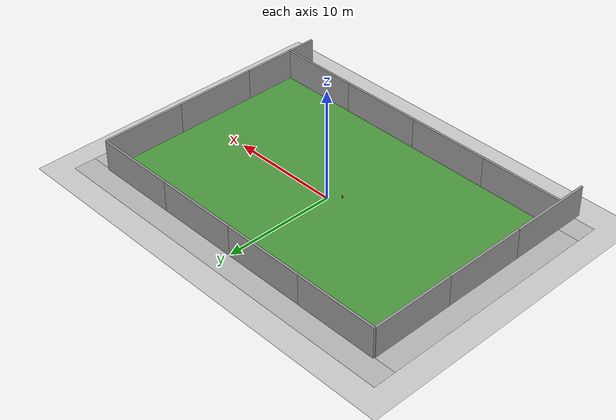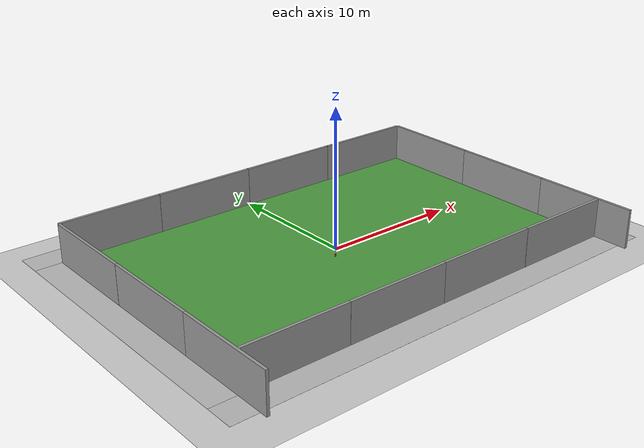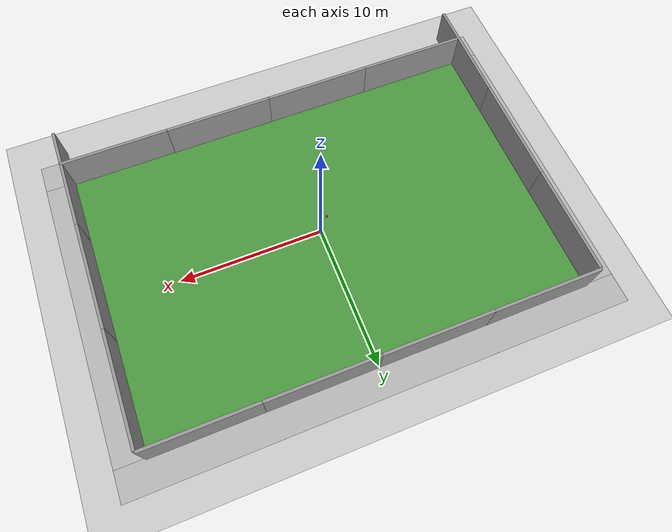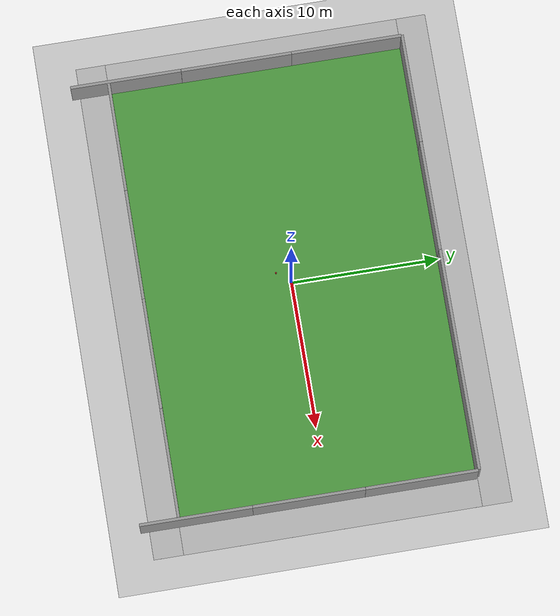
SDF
<sdf version="1.7">
 <world name="default">
  <model name="ground_plane">
   <static>1</static>
   <link name="link">
    <collision name="collision">
     <geometry><plane><normal>0 0 1</normal><size>100 100</size></plane></geometry>
     <surface><friction><ode><mu>100</mu><mu2>50</mu2></ode></friction></surface>
    </collision>
    <visual name="visual">
     <cast_shadows>0</cast_shadows>
     <geometry><plane><normal>0 0 1</normal><size>100 100</size></plane></geometry>
     <material>
      <script><uri>file://media/materials/scripts/gazebo.material</uri><name>Gazebo/Grey</name></script>
     </material>
    </visual>
   </link>
  </model>
  <light name="sun" type="directional">
   <pose>0 0 10 0 -0 0</pose>
   <diffuse>0.8 0.8 0.8 1</diffuse>
   <specular>0.2 0.2 0.2 1</specular>
   <attenuation>
    <range>1000</range>
    <constant>0.9</constant>
    <linear>0.01</linear>
    <quadratic>0.001</quadratic>
   </attenuation>
   <direction>-0.5 0.1 -0.9</direction>
   <spot><inner_angle>0</inner_angle><outer_angle>0</outer_angle><falloff>0</falloff></spot>
  </light>
  <scene><shadows>0</shadows><ambient>0.4 0.4 0.4 1</ambient><background>0.7 0.7 0.7 1</background></scene>
  <physics type="ode">
   <real_time_update_rate>1000</real_time_update_rate>
   <max_step_size>0.001</max_step_size>
   <real_time_factor>1</real_time_factor>
   <ode>
    <solver>
     <type>quick</type>
     <iters>150</iters>
     <precon_iters>0</precon_iters>
     <sor>1.4</sor>
     <use_dynamic_moi_rescaling>1</use_dynamic_moi_rescaling>
    </solver>
    <constraints>
     <cfm>1e-05</cfm>
     <erp>0.2</erp>
     <contact_max_correcting_vel>2000</contact_max_correcting_vel>
     <contact_surface_layer>0.01</contact_surface_layer>
    </constraints>
   </ode>
  </physics>
  <gravity>0 0 -9.8</gravity>
  <magnetic_field>6e-06 2.3e-05 -4.2e-05</magnetic_field>
  <atmosphere type="adiabatic"/>
  <spherical_coordinates>
   <surface_model>EARTH_WGS84</surface_model>
   <latitude_deg>0</latitude_deg>
   <longitude_deg>0</longitude_deg>
   <elevation>0</elevation>
   <heading_deg>0</heading_deg>
  </spherical_coordinates>
  <model name="robocup_3d_field">
   <static>1</static>
   <link name="field">
    <pose>0 0 0.01 0 -0 0</pose>
    <collision name="collision">
     <geometry><plane><normal>0 0 1</normal><size>30 20</size></plane></geometry>
     <surface><friction><ode><mu>100</mu><mu2>50</mu2></ode></friction></surface>
    </collision>
    <visual name="base1">
     <pose>0 11 0.001 0 -0 0</pose>
     <cast_shadows>0</cast_shadows>
     <geometry><plane><normal>0 0 1</normal><size>34 2</size></plane></geometry>
     <material>
      <script>
       <uri>model://robocup_3Dsim_field/materials/scripts/</uri>
       <uri>model://robocup_3Dsim_field/materials/textures/</uri>
       <name>RoboCup/FieldBorder</name>
      </script>
     </material>
    </visual>
    <visual name="base2">
     <pose>0 -11 0.001 0 -0 0</pose>
     <cast_shadows>0</cast_shadows>
     <geometry><plane><normal>0 0 1</normal><size>34 2</size></plane></geometry>
     <material>
      <script>
       <uri>model://robocup_3Dsim_field/materials/scripts/</uri>
       <uri>model://robocup_3Dsim_field/materials/textures/</uri>
       <name>RoboCup/FieldBorder</name>
      </script>
     </material>
    </visual>
    <visual name="base3">
     <pose>16 0 0.001 0 -0 0</pose>
     <cast_shadows>0</cast_shadows>
     <geometry><plane><normal>0 0 1</normal><size>2 20</size></plane></geometry>
     <material>
      <script>
       <uri>model://robocup_3Dsim_field/materials/scripts/</uri>
       <uri>model://robocup_3Dsim_field/materials/textures/</uri>
       <name>RoboCup/FieldBorder</name>
      </script>
     </material>
    </visual>
    <visual name="base4">
     <pose>-16 0 0.001 0 -0 0</pose>
     <cast_shadows>0</cast_shadows>
     <geometry><plane><normal>0 0 1</normal><size>2 20</size></plane></geometry>
     <material>
      <script>
       <uri>model://robocup_3Dsim_field/materials/scripts/</uri>
       <uri>model://robocup_3Dsim_field/materials/textures/</uri>
       <name>RoboCup/FieldBorder</name>
      </script>
     </material>
    </visual>
    <visual name="carpet">
     <cast_shadows>0</cast_shadows>
     <geometry><plane><normal>0 0 1</normal><size>30 20</size></plane></geometry>
     <material>
      <script>
       <uri>model://robocup_3Dsim_field/materials/scripts/</uri>
       <uri>model://robocup_3Dsim_field/materials/textures/</uri>
       <name>RoboCup/Grass</name>
      </script>
     </material>
    </visual>
   </link>
   <pose>0.014638 -0.007381 0 0 -0 0</pose>
  </model>
  <model name="grey_wall">
   <static>1</static>
   <link name="link">
    <pose>0 0 1.4 0 -0 0</pose>
    <collision name="collision"><geometry><box><size>7.5 0.2 2.8</size></box></geometry></collision>
    <visual name="visual">
     <cast_shadows>0</cast_shadows>
     <geometry><box><size>7.5 0.2 2.8</size></box></geometry>
     <material>
      <script>
       <uri>model://grey_wall/materials/scripts</uri>
       <uri>model://grey_wall/materials/textures</uri>
       <name>vrc/grey_wall</name>
      </script>
     </material>
    </visual>
   </link>
   <pose>-11.2572 10.0129 0 0 -0 0</pose>
  </model>
  <model name="grey_wall_clone">
   <static>1</static>
   <link name="link">
    <pose>0 0 1.4 0 -0 0</pose>
    <collision name="collision"><geometry><box><size>7.5 0.2 2.8</size></box></geometry></collision>
    <visual name="visual">
     <cast_shadows>0</cast_shadows>
     <geometry><box><size>7.5 0.2 2.8</size></box></geometry>
     <material>
      <script>
       <uri>model://grey_wall/materials/scripts</uri>
       <uri>model://grey_wall/materials/textures</uri>
       <name>vrc/grey_wall</name>
      </script>
     </material>
    </visual>
   </link>
   <pose>-3.75841 10.0047 0 0 -0 0</pose>
  </model>
  <model name="grey_wall_clone_0">
   <static>1</static>
   <link name="link">
    <pose>0 0 1.4 0 -0 0</pose>
    <collision name="collision"><geometry><box><size>7.5 0.2 2.8</size></box></geometry></collision>
    <visual name="visual">
     <cast_shadows>0</cast_shadows>
     <geometry><box><size>7.5 0.2 2.8</size></box></geometry>
     <material>
      <script>
       <uri>model://grey_wall/materials/scripts</uri>
       <uri>model://grey_wall/materials/textures</uri>
       <name>vrc/grey_wall</name>
      </script>
     </material>
    </visual>
   </link>
   <pose>3.74716 10.0083 0 0 -0 0</pose>
  </model>
  <model name="grey_wall_clone_1">
   <static>1</static>
   <link name="link">
    <pose>0 0 1.4 0 -0 0</pose>
    <collision name="collision"><geometry><box><size>7.5 0.2 2.8</size></box></geometry></collision>
    <visual name="visual">
     <cast_shadows>0</cast_shadows>
     <geometry><box><size>7.5 0.2 2.8</size></box></geometry>
     <material>
      <script>
       <uri>model://grey_wall/materials/scripts</uri>
       <uri>model://grey_wall/materials/textures</uri>
       <name>vrc/grey_wall</name>
      </script>
     </material>
    </visual>
   </link>
   <pose>11.2527 10.0033 0 0 -0 0</pose>
  </model>
  <model name="grey_wall_clone_2">
   <static>1</static>
   <link name="link">
    <pose>0 0 1.4 0 -0 0</pose>
    <collision name="collision"><geometry><box><size>7.5 0.2 2.8</size></box></geometry></collision>
    <visual name="visual">
     <cast_shadows>0</cast_shadows>
     <geometry><box><size>7.5 0.2 2.8</size></box></geometry>
     <material>
      <script>
       <uri>model://grey_wall/materials/scripts</uri>
       <uri>model://grey_wall/materials/textures</uri>
       <name>vrc/grey_wall</name>
      </script>
     </material>
    </visual>
   </link>
   <pose>15.037 6.18566 -0 0 0 -1.57143</pose>
  </model>
  <model name="grey_wall_clone_2_clone">
   <static>1</static>
   <link name="link">
    <pose>0 0 1.4 0 -0 0</pose>
    <collision name="collision"><geometry><box><size>7.5 0.2 2.8</size></box></geometry></collision>
    <visual name="visual">
     <cast_shadows>0</cast_shadows>
     <geometry><box><size>7.5 0.2 2.8</size></box></geometry>
     <material>
      <script>
       <uri>model://grey_wall/materials/scripts</uri>
       <uri>model://grey_wall/materials/textures</uri>
       <name>vrc/grey_wall</name>
      </script>
     </material>
    </visual>
   </link>
   <pose>15.0301 -1.3169 -0 0 0 -1.57143</pose>
  </model>
  <model name="grey_wall_clone_2_clone_0">
   <static>1</static>
   <link name="link">
    <pose>0 0 1.4 0 -0 0</pose>
    <collision name="collision"><geometry><box><size>7.5 0.2 2.8</size></box></geometry></collision>
    <visual name="visual">
     <cast_shadows>0</cast_shadows>
     <geometry><box><size>7.5 0.2 2.8</size></box></geometry>
     <material>
      <script>
       <uri>model://grey_wall/materials/scripts</uri>
       <uri>model://grey_wall/materials/textures</uri>
       <name>vrc/grey_wall</name>
      </script>
     </material>
    </visual>
   </link>
   <pose>15.0285 -8.81401 -0 0 0 -1.57143</pose>
  </model>
  <model name="grey_wall_clone_2_clone_1">
   <static>1</static>
   <link name="link">
    <pose>0 0 1.4 0 -0 0</pose>
    <collision name="collision"><geometry><box><size>7.5 0.2 2.8</size></box></geometry></collision>
    <visual name="visual">
     <cast_shadows>0</cast_shadows>
     <geometry><box><size>7.5 0.2 2.8</size></box></geometry>
     <material>
      <script>
       <uri>model://grey_wall/materials/scripts</uri>
       <uri>model://grey_wall/materials/textures</uri>
       <name>vrc/grey_wall</name>
      </script>
     </material>
    </visual>
   </link>
   <pose>-14.987 6.19845 -0 0 0 -1.57143</pose>
  </model>
  <model name="grey_wall_clone_2_clone_2">
   <static>1</static>
   <link name="link">
    <pose>0 0 1.4 0 -0 0</pose>
    <collision name="collision"><geometry><box><size>7.5 0.2 2.8</size></box></geometry></collision>
    <visual name="visual">
     <cast_shadows>0</cast_shadows>
     <geometry><box><size>7.5 0.2 2.8</size></box></geometry>
     <material>
      <script>
       <uri>model://grey_wall/materials/scripts</uri>
       <uri>model://grey_wall/materials/textures</uri>
       <name>vrc/grey_wall</name>
      </script>
     </material>
    </visual>
   </link>
   <pose>-14.9873 -1.27495 -0 0 0 -1.57143</pose>
  </model>
  <model name="grey_wall_clone_2_clone_3">
   <static>1</static>
   <link name="link">
    <pose>0 0 1.4 0 -0 0</pose>
    <collision name="collision"><geometry><box><size>7.5 0.2 2.8</size></box></geometry></collision>
    <visual name="visual">
     <cast_shadows>0</cast_shadows>
     <geometry><box><size>7.5 0.2 2.8</size></box></geometry>
     <material>
      <script>
       <uri>model://grey_wall/materials/scripts</uri>
       <uri>model://grey_wall/materials/textures</uri>
       <name>vrc/grey_wall</name>
      </script>
     </material>
    </visual>
   </link>
   <pose>-14.997 -8.77773 -0 0 0 -1.57143</pose>
  </model>
  <model name="grey_wall_clone_3">
   <static>1</static>
   <link name="link">
    <pose>0 0 1.4 0 -0 0</pose>
    <collision name="collision"><geometry><box><size>7.5 0.2 2.8</size></box></geometry></collision>
    <visual name="visual">
     <cast_shadows>0</cast_shadows>
     <geometry><box><size>7.5 0.2 2.8</size></box></geometry>
     <material>
      <script>
       <uri>model://grey_wall/materials/scripts</uri>
       <uri>model://grey_wall/materials/textures</uri>
       <name>vrc/grey_wall</name>
      </script>
     </material>
    </visual>
   </link>
   <pose>-11.1486 -9.95141 0 0 -0 0</pose>
  </model>
  <model name="grey_wall_clone_4">
   <static>1</static>
   <link name="link">
    <pose>0 0 1.4 0 -0 0</pose>
    <collision name="collision"><geometry><box><size>7.5 0.2 2.8</size></box></geometry></collision>
    <visual name="visual">
     <cast_shadows>0</cast_shadows>
     <geometry><box><size>7.5 0.2 2.8</size></box></geometry>
     <material>
      <script>
       <uri>model://grey_wall/materials/scripts</uri>
       <uri>model://grey_wall/materials/textures</uri>
       <name>vrc/grey_wall</name>
      </script>
     </material>
    </visual>
   </link>
   <pose>-3.64523 -9.95009 0 0 -0 0</pose>
  </model>
  <model name="grey_wall_clone_5">
   <static>1</static>
   <link name="link">
    <pose>0 0 1.4 0 -0 0</pose>
    <collision name="collision"><geometry><box><size>7.5 0.2 2.8</size></box></geometry></collision>
    <visual name="visual">
     <cast_shadows>0</cast_shadows>
     <geometry><box><size>7.5 0.2 2.8</size></box></geometry>
     <material>
      <script>
       <uri>model://grey_wall/materials/scripts</uri>
       <uri>model://grey_wall/materials/textures</uri>
       <name>vrc/grey_wall</name>
      </script>
     </material>
    </visual>
   </link>
   <pose>3.84052 -9.94562 0 0 -0 0</pose>
  </model>
  <model name="grey_wall_clone_6">
   <static>1</static>
   <link name="link">
    <pose>0 0 1.4 0 -0 0</pose>
    <collision name="collision"><geometry><box><size>7.5 0.2 2.8</size></box></geometry></collision>
    <visual name="visual">
     <cast_shadows>0</cast_shadows>
     <geometry><box><size>7.5 0.2 2.8</size></box></geometry>
     <material>
      <script>
       <uri>model://grey_wall/materials/scripts</uri>
       <uri>model://grey_wall/materials/textures</uri>
       <name>vrc/grey_wall</name>
      </script>
     </material>
    </visual>
   </link>
   <pose>11.3458 -9.95179 0 0 -0 0</pose>
  </model>
  <model name="object1">
   <link name="link">
    <inertial>
     <mass>1</mass>
     <inertia>
      <ixx>0.166667</ixx>
      <ixy>0</ixy>
      <ixz>0</ixz>
      <iyy>0.166667</iyy>
      <iyz>0</iyz>
      <izz>0.166667</izz>
     </inertia>
    </inertial>
    <visual name="visual">
     <geometry><box><size>0.1 0.1 0.1</size></box></geometry>
     <material><script><name>Gazebo/Red</name><uri>__default__</uri></script></material>
    </visual>
    <collision name="collision">
     <geometry><box><size>0.1 0.1 0.1</size></box></geometry>
     <surface>
      <friction>
       <ode><mu>1</mu><mu2>1</mu2><fdir1>0 0 0</fdir1><slip1>0</slip1><slip2>0</slip2></ode>
       <torsional>
        <coefficient>1</coefficient>
        <patch_radius>0</patch_radius>
        <surface_radius>0</surface_radius>
        <use_patch_radius>1</use_patch_radius>
        <ode><slip>0</slip></ode>
       </torsional>
      </friction>
      <bounce><restitution_coefficient>0</restitution_coefficient><threshold>1e+06</threshold></bounce>
      <contact>
       <collide_without_contact>0</collide_without_contact>
       <collide_without_contact_bitmask>1</collide_without_contact_bitmask>
       <collide_bitmask>1</collide_bitmask>
       <ode>
        <soft_cfm>0</soft_cfm>
        <soft_erp>0.2</soft_erp>
        <kp>1e+13</kp>
        <kd>1</kd>
        <max_vel>0.01</max_vel>
        <min_depth>0</min_depth>
       </ode>
       <bullet>
        <split_impulse>1</split_impulse>
        <split_impulse_penetration_threshold>-0.01</split_impulse_penetration_threshold>
        <soft_cfm>0</soft_cfm>
        <soft_erp>0.2</soft_erp>
        <kp>1e+13</kp>
        <kd>1</kd>
       </bullet>
      </contact>
     </surface>
    </collision>
   </link>
   <static>0</static>
   <pose>0.006073 0.017052 0.06 -0 1e-06 -1.8e-05</pose>
  </model>
  <model name="object2">
   <link name="link">
    <inertial>
     <mass>1</mass>
     <inertia><ixx>0.145833</ixx><ixy>0</ixy><ixz>0</ixz><iyy>0.145833</iyy><iyz>0</iyz><izz>0.125</izz></inertia>
    </inertial>
    <visual name="visual">
     <geometry><cylinder><radius>0.05</radius><length>0.2</length></cylinder></geometry>
     <material><script><name>Gazebo/Red</name><uri>__default__</uri></script></material>
    </visual>
    <collision name="collision">
     <geometry><cylinder><radius>0.05</radius><length>0.2</length></cylinder></geometry>
     <surface>
      <friction>
       <ode><mu>1</mu><mu2>1</mu2><fdir1>0 0 0</fdir1><slip1>0</slip1><slip2>0</slip2></ode>
       <torsional>
        <coefficient>1</coefficient>
        <patch_radius>0</patch_radius>
        <surface_radius>0</surface_radius>
        <use_patch_radius>1</use_patch_radius>
        <ode><slip>0</slip></ode>
       </torsional>
      </friction>
      <bounce><restitution_coefficient>0</restitution_coefficient><threshold>1e+06</threshold></bounce>
      <contact>
       <collide_without_contact>0</collide_without_contact>
       <collide_without_contact_bitmask>1</collide_without_contact_bitmask>
       <collide_bitmask>1</collide_bitmask>
       <ode>
        <soft_cfm>0</soft_cfm>
        <soft_erp>0.2</soft_erp>
        <kp>1e+13</kp>
        <kd>1</kd>
        <max_vel>0.01</max_vel>
        <min_depth>0</min_depth>
       </ode>
       <bullet>
        <split_impulse>1</split_impulse>
        <split_impulse_penetration_threshold>-0.01</split_impulse_penetration_threshold>
        <soft_cfm>0</soft_cfm>
        <soft_erp>0.2</soft_erp>
        <kp>1e+13</kp>
        <kd>1</kd>
       </bullet>
      </contact>
     </surface>
    </collision>
   </link>
   <static>0</static>
   <pose>-0.809471 -0.911813 0.109991 0 -0 -1e-05</pose>
  </model>
  <model name="object1_0">
   <link name="link">
    <inertial>
     <mass>1</mass>
     <inertia>
      <ixx>0.166667</ixx>
      <ixy>0</ixy>
      <ixz>0</ixz>
      <iyy>0.166667</iyy>
      <iyz>0</iyz>
      <izz>0.166667</izz>
     </inertia>
    </inertial>
    <visual name="visual">
     <geometry><box><size>0.1 0.1 0.1</size></box></geometry>
     <material><script><name>Gazebo/Red</name><uri>__default__</uri></script></material>
    </visual>
    <collision name="collision">
     <geometry><box><size>0.1 0.1 0.1</size></box></geometry>
     <surface>
      <friction>
       <ode><mu>1</mu><mu2>1</mu2><fdir1>0 0 0</fdir1><slip1>0</slip1><slip2>0</slip2></ode>
       <torsional>
        <coefficient>1</coefficient>
        <patch_radius>0</patch_radius>
        <surface_radius>0</surface_radius>
        <use_patch_radius>1</use_patch_radius>
        <ode><slip>0</slip></ode>
       </torsional>
      </friction>
      <bounce><restitution_coefficient>0</restitution_coefficient><threshold>1e+06</threshold></bounce>
      <contact>
       <collide_without_contact>0</collide_without_contact>
       <collide_without_contact_bitmask>1</collide_without_contact_bitmask>
       <collide_bitmask>1</collide_bitmask>
       <ode>
        <soft_cfm>0</soft_cfm>
        <soft_erp>0.2</soft_erp>
        <kp>1e+13</kp>
        <kd>1</kd>
        <max_vel>0.01</max_vel>
        <min_depth>0</min_depth>
       </ode>
       <bullet>
        <split_impulse>1</split_impulse>
        <split_impulse_penetration_threshold>-0.01</split_impulse_penetration_threshold>
        <soft_cfm>0</soft_cfm>
        <soft_erp>0.2</soft_erp>
        <kp>1e+13</kp>
        <kd>1</kd>
       </bullet>
      </contact>
     </surface>
    </collision>
   </link>
   <static>0</static>
   <pose>1.1929 -0.118567 0.06 0 -1e-06 -4e-06</pose>
  </model>
  <model name="object2_0">
   <link name="link">
    <inertial>
     <mass>1</mass>
     <inertia><ixx>0.145833</ixx><ixy>0</ixy><ixz>0</ixz><iyy>0.145833</iyy><iyz>0</iyz><izz>0.125</izz></inertia>
    </inertial>
    <visual name="visual">
     <geometry><cylinder><radius>0.05</radius><length>0.2</length></cylinder></geometry>
     <material><script><name>Gazebo/Red</name><uri>__default__</uri></script></material>
    </visual>
    <collision name="collision">
     <geometry><cylinder><radius>0.05</radius><length>0.2</length></cylinder></geometry>
     <surface>
      <friction>
       <ode><mu>1</mu><mu2>1</mu2><fdir1>0 0 0</fdir1><slip1>0</slip1><slip2>0</slip2></ode>
       <torsional>
        <coefficient>1</coefficient>
        <patch_radius>0</patch_radius>
        <surface_radius>0</surface_radius>
        <use_patch_radius>1</use_patch_radius>
        <ode><slip>0</slip></ode>
       </torsional>
      </friction>
      <bounce><restitution_coefficient>0</restitution_coefficient><threshold>1e+06</threshold></bounce>
      <contact>
       <collide_without_contact>0</collide_without_contact>
       <collide_without_contact_bitmask>1</collide_without_contact_bitmask>
       <collide_bitmask>1</collide_bitmask>
       <ode>
        <soft_cfm>0</soft_cfm>
        <soft_erp>0.2</soft_erp>
        <kp>1e+13</kp>
        <kd>1</kd>
        <max_vel>0.01</max_vel>
        <min_depth>0</min_depth>
       </ode>
       <bullet>
        <split_impulse>1</split_impulse>
        <split_impulse_penetration_threshold>-0.01</split_impulse_penetration_threshold>
        <soft_cfm>0</soft_cfm>
        <soft_erp>0.2</soft_erp>
        <kp>1e+13</kp>
        <kd>1</kd>
       </bullet>
      </contact>
     </surface>
    </collision>
   </link>
   <static>0</static>
   <pose>-0.072115 1.24336 0.109991 0 -0 -1e-05</pose>
  </model>
 </world>
</sdf>
